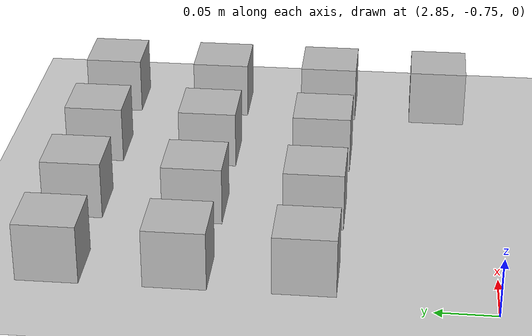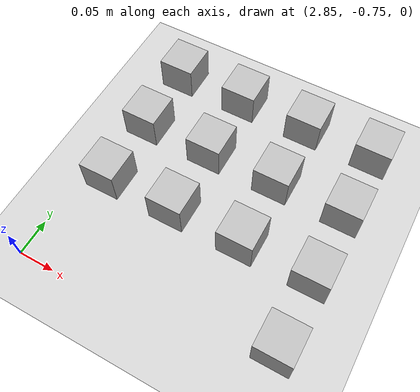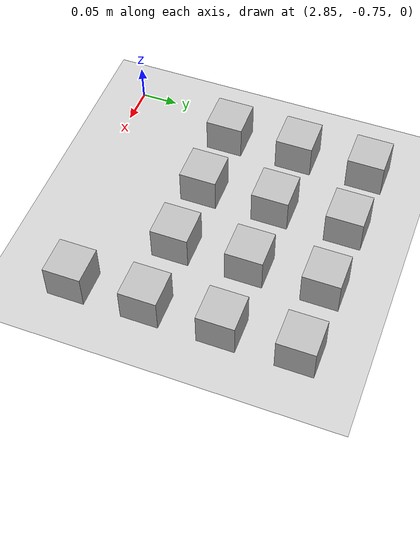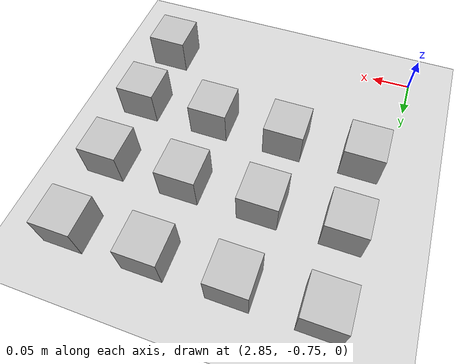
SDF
<sdf version="1.6">
 <world name="default">
  <model name="ground_plane">
   <static>1</static>
   <link name="link">
    <collision name="collision">
     <geometry><plane><normal>0 0 1</normal><size>100 100</size></plane></geometry>
     <surface><friction><ode><mu>100</mu><mu2>50</mu2></ode></friction></surface>
    </collision>
    <visual name="visual">
     <cast_shadows>0</cast_shadows>
     <geometry><plane><normal>0 0 1</normal><size>100 100</size></plane></geometry>
     <material>
      <script><uri>file://media/materials/scripts/gazebo.material</uri><name>Gazebo/Grey</name></script>
     </material>
    </visual>
   </link>
  </model>
  <model name="at115">
   <static>0</static>
   <link name="link">
    <inertial>
     <mass>0.01</mass>
     <inertia><ixx>4e-05</ixx><ixy>0</ixy><ixz>0</ixz><iyy>4e-05</iyy><iyz>0</iyz><izz>4e-05</izz></inertia>
    </inertial>
    <visual name="visual">
     <geometry><box><size>0.05 0.05 0.05</size></box></geometry>
     <material>
      <script>
       <uri>model://at0/materials/scripts</uri>
       <uri>model://at0/materials/textures</uri>
       <name>at0/Diffuse</name>
      </script>
     </material>
    </visual>
    <collision name="collision">
     <geometry><box><size>0.05 0.05 0.05</size></box></geometry>
     <surface><friction><ode><mu>0.8</mu><mu2>0.7</mu2></ode></friction></surface>
    </collision>
   </link>
   <pose>3.18893 -0.70161 0.025 0 -2e-06 0</pose>
  </model>
  <model name="at116">
   <static>0</static>
   <link name="link">
    <inertial>
     <mass>0.01</mass>
     <inertia><ixx>4e-05</ixx><ixy>0</ixy><ixz>0</ixz><iyy>4e-05</iyy><iyz>0</iyz><izz>4e-05</izz></inertia>
    </inertial>
    <visual name="visual">
     <geometry><box><size>0.05 0.05 0.05</size></box></geometry>
     <material>
      <script>
       <uri>model://at0/materials/scripts</uri>
       <uri>model://at0/materials/textures</uri>
       <name>at0/Diffuse</name>
      </script>
     </material>
    </visual>
    <collision name="collision">
     <geometry><box><size>0.05 0.05 0.05</size></box></geometry>
     <surface><friction><ode><mu>0.8</mu><mu2>0.7</mu2></ode></friction></surface>
    </collision>
   </link>
   <pose>2.88893 -0.60161 0.025 0 -2e-06 0</pose>
  </model>
  <model name="at117">
   <static>0</static>
   <link name="link">
    <inertial>
     <mass>0.01</mass>
     <inertia><ixx>4e-05</ixx><ixy>0</ixy><ixz>0</ixz><iyy>4e-05</iyy><iyz>0</iyz><izz>4e-05</izz></inertia>
    </inertial>
    <visual name="visual">
     <geometry><box><size>0.05 0.05 0.05</size></box></geometry>
     <material>
      <script>
       <uri>model://at0/materials/scripts</uri>
       <uri>model://at0/materials/textures</uri>
       <name>at0/Diffuse</name>
      </script>
     </material>
    </visual>
    <collision name="collision">
     <geometry><box><size>0.05 0.05 0.05</size></box></geometry>
     <surface><friction><ode><mu>0.8</mu><mu2>0.7</mu2></ode></friction></surface>
    </collision>
   </link>
   <pose>2.98893 -0.60161 0.025 0 -2e-06 0</pose>
  </model>
  <model name="at118">
   <static>0</static>
   <link name="link">
    <inertial>
     <mass>0.01</mass>
     <inertia><ixx>4e-05</ixx><ixy>0</ixy><ixz>0</ixz><iyy>4e-05</iyy><iyz>0</iyz><izz>4e-05</izz></inertia>
    </inertial>
    <visual name="visual">
     <geometry><box><size>0.05 0.05 0.05</size></box></geometry>
     <material>
      <script>
       <uri>model://at0/materials/scripts</uri>
       <uri>model://at0/materials/textures</uri>
       <name>at0/Diffuse</name>
      </script>
     </material>
    </visual>
    <collision name="collision">
     <geometry><box><size>0.05 0.05 0.05</size></box></geometry>
     <surface><friction><ode><mu>0.8</mu><mu2>0.7</mu2></ode></friction></surface>
    </collision>
   </link>
   <pose>3.08893 -0.60161 0.025 0 -2e-06 0</pose>
  </model>
  <model name="at119">
   <static>0</static>
   <link name="link">
    <inertial>
     <mass>0.01</mass>
     <inertia><ixx>4e-05</ixx><ixy>0</ixy><ixz>0</ixz><iyy>4e-05</iyy><iyz>0</iyz><izz>4e-05</izz></inertia>
    </inertial>
    <visual name="visual">
     <geometry><box><size>0.05 0.05 0.05</size></box></geometry>
     <material>
      <script>
       <uri>model://at0/materials/scripts</uri>
       <uri>model://at0/materials/textures</uri>
       <name>at0/Diffuse</name>
      </script>
     </material>
    </visual>
    <collision name="collision">
     <geometry><box><size>0.05 0.05 0.05</size></box></geometry>
     <surface><friction><ode><mu>0.8</mu><mu2>0.7</mu2></ode></friction></surface>
    </collision>
   </link>
   <pose>3.18893 -0.60161 0.02499 0 2e-06 0</pose>
  </model>
  <model name="at120">
   <static>0</static>
   <link name="link">
    <inertial>
     <mass>0.01</mass>
     <inertia><ixx>4e-05</ixx><ixy>0</ixy><ixz>0</ixz><iyy>4e-05</iyy><iyz>0</iyz><izz>4e-05</izz></inertia>
    </inertial>
    <visual name="visual">
     <geometry><box><size>0.05 0.05 0.05</size></box></geometry>
     <material>
      <script>
       <uri>model://at0/materials/scripts</uri>
       <uri>model://at0/materials/textures</uri>
       <name>at0/Diffuse</name>
      </script>
     </material>
    </visual>
    <collision name="collision">
     <geometry><box><size>0.05 0.05 0.05</size></box></geometry>
     <surface><friction><ode><mu>0.8</mu><mu2>0.7</mu2></ode></friction></surface>
    </collision>
   </link>
   <pose>2.88893 -0.50161 0.025 0 -2e-06 0</pose>
  </model>
  <model name="at121">
   <static>0</static>
   <link name="link">
    <inertial>
     <mass>0.01</mass>
     <inertia><ixx>4e-05</ixx><ixy>0</ixy><ixz>0</ixz><iyy>4e-05</iyy><iyz>0</iyz><izz>4e-05</izz></inertia>
    </inertial>
    <visual name="visual">
     <geometry><box><size>0.05 0.05 0.05</size></box></geometry>
     <material>
      <script>
       <uri>model://at0/materials/scripts</uri>
       <uri>model://at0/materials/textures</uri>
       <name>at0/Diffuse</name>
      </script>
     </material>
    </visual>
    <collision name="collision">
     <geometry><box><size>0.05 0.05 0.05</size></box></geometry>
     <surface><friction><ode><mu>0.8</mu><mu2>0.7</mu2></ode></friction></surface>
    </collision>
   </link>
   <pose>2.98893 -0.50161 0.02499 0 2e-06 0</pose>
  </model>
  <model name="at122">
   <static>0</static>
   <link name="link">
    <inertial>
     <mass>0.01</mass>
     <inertia><ixx>4e-05</ixx><ixy>0</ixy><ixz>0</ixz><iyy>4e-05</iyy><iyz>0</iyz><izz>4e-05</izz></inertia>
    </inertial>
    <visual name="visual">
     <geometry><box><size>0.05 0.05 0.05</size></box></geometry>
     <material>
      <script>
       <uri>model://at0/materials/scripts</uri>
       <uri>model://at0/materials/textures</uri>
       <name>at0/Diffuse</name>
      </script>
     </material>
    </visual>
    <collision name="collision">
     <geometry><box><size>0.05 0.05 0.05</size></box></geometry>
     <surface><friction><ode><mu>0.8</mu><mu2>0.7</mu2></ode></friction></surface>
    </collision>
   </link>
   <pose>3.08893 -0.50161 0.025 0 -2e-06 0</pose>
  </model>
  <model name="at123">
   <static>0</static>
   <link name="link">
    <inertial>
     <mass>0.01</mass>
     <inertia><ixx>4e-05</ixx><ixy>0</ixy><ixz>0</ixz><iyy>4e-05</iyy><iyz>0</iyz><izz>4e-05</izz></inertia>
    </inertial>
    <visual name="visual">
     <geometry><box><size>0.05 0.05 0.05</size></box></geometry>
     <material>
      <script>
       <uri>model://at0/materials/scripts</uri>
       <uri>model://at0/materials/textures</uri>
       <name>at0/Diffuse</name>
      </script>
     </material>
    </visual>
    <collision name="collision">
     <geometry><box><size>0.05 0.05 0.05</size></box></geometry>
     <surface><friction><ode><mu>0.8</mu><mu2>0.7</mu2></ode></friction></surface>
    </collision>
   </link>
   <pose>3.18893 -0.50161 0.025 0 -2e-06 0</pose>
  </model>
  <model name="at124">
   <static>0</static>
   <link name="link">
    <inertial>
     <mass>0.01</mass>
     <inertia><ixx>4e-05</ixx><ixy>0</ixy><ixz>0</ixz><iyy>4e-05</iyy><iyz>0</iyz><izz>4e-05</izz></inertia>
    </inertial>
    <visual name="visual">
     <geometry><box><size>0.05 0.05 0.05</size></box></geometry>
     <material>
      <script>
       <uri>model://at0/materials/scripts</uri>
       <uri>model://at0/materials/textures</uri>
       <name>at0/Diffuse</name>
      </script>
     </material>
    </visual>
    <collision name="collision">
     <geometry><box><size>0.05 0.05 0.05</size></box></geometry>
     <surface><friction><ode><mu>0.8</mu><mu2>0.7</mu2></ode></friction></surface>
    </collision>
   </link>
   <pose>2.88893 -0.40161 0.02499 0 2e-06 0</pose>
  </model>
  <model name="at125">
   <static>0</static>
   <link name="link">
    <inertial>
     <mass>0.01</mass>
     <inertia><ixx>4e-05</ixx><ixy>0</ixy><ixz>0</ixz><iyy>4e-05</iyy><iyz>0</iyz><izz>4e-05</izz></inertia>
    </inertial>
    <visual name="visual">
     <geometry><box><size>0.05 0.05 0.05</size></box></geometry>
     <material>
      <script>
       <uri>model://at0/materials/scripts</uri>
       <uri>model://at0/materials/textures</uri>
       <name>at0/Diffuse</name>
      </script>
     </material>
    </visual>
    <collision name="collision">
     <geometry><box><size>0.05 0.05 0.05</size></box></geometry>
     <surface><friction><ode><mu>0.8</mu><mu2>0.7</mu2></ode></friction></surface>
    </collision>
   </link>
   <pose>2.98893 -0.40161 0.025 0 -2e-06 0</pose>
  </model>
  <model name="at126">
   <static>0</static>
   <link name="link">
    <inertial>
     <mass>0.01</mass>
     <inertia><ixx>4e-05</ixx><ixy>0</ixy><ixz>0</ixz><iyy>4e-05</iyy><iyz>0</iyz><izz>4e-05</izz></inertia>
    </inertial>
    <visual name="visual">
     <geometry><box><size>0.05 0.05 0.05</size></box></geometry>
     <material>
      <script>
       <uri>model://at0/materials/scripts</uri>
       <uri>model://at0/materials/textures</uri>
       <name>at0/Diffuse</name>
      </script>
     </material>
    </visual>
    <collision name="collision">
     <geometry><box><size>0.05 0.05 0.05</size></box></geometry>
     <surface><friction><ode><mu>0.8</mu><mu2>0.7</mu2></ode></friction></surface>
    </collision>
   </link>
   <pose>3.08893 -0.40161 0.02499 0 2e-06 0</pose>
  </model>
  <model name="at127">
   <static>0</static>
   <link name="link">
    <inertial>
     <mass>0.01</mass>
     <inertia><ixx>4e-05</ixx><ixy>0</ixy><ixz>0</ixz><iyy>4e-05</iyy><iyz>0</iyz><izz>4e-05</izz></inertia>
    </inertial>
    <visual name="visual">
     <geometry><box><size>0.05 0.05 0.05</size></box></geometry>
     <material>
      <script>
       <uri>model://at0/materials/scripts</uri>
       <uri>model://at0/materials/textures</uri>
       <name>at0/Diffuse</name>
      </script>
     </material>
    </visual>
    <collision name="collision">
     <geometry><box><size>0.05 0.05 0.05</size></box></geometry>
     <surface><friction><ode><mu>0.8</mu><mu2>0.7</mu2></ode></friction></surface>
    </collision>
   </link>
   <pose>3.18893 -0.40161 0.02499 0 2e-06 0</pose>
  </model>
 </world>
</sdf>
